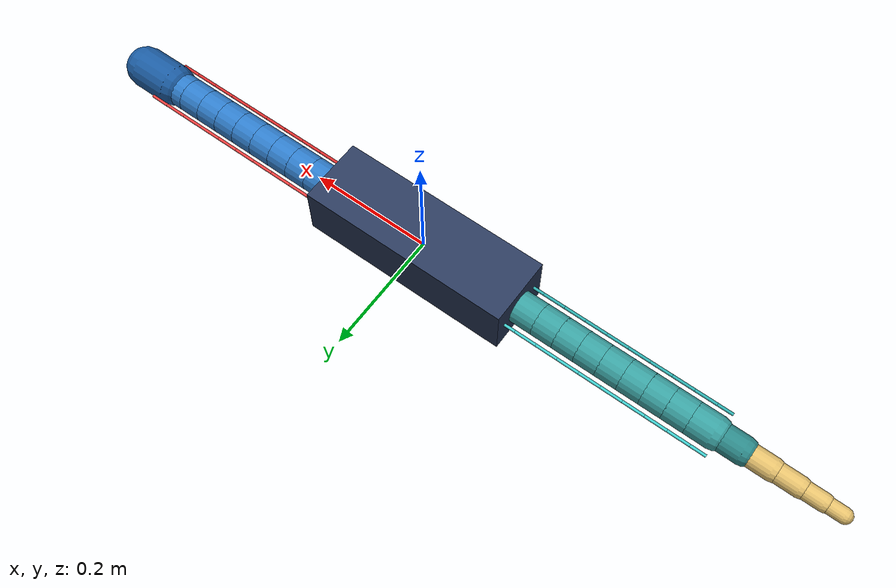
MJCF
<mujoco model="eel_2d_tendon">
  <!-- Topology follows model/prompt_model.md; scale cues are adapted from model/fish.STEP (CAD units are millimeters). -->
  <compiler angle="degree" autolimits="true" inertiafromgeom="true"/>
  <option timestep="0.002" gravity="0 0 0" integrator="implicitfast" cone="elliptic" iterations="100">
    <flag contact="disable"/>
  </option>
  <default>
    <geom type="capsule" contype="0" conaffinity="0" group="1"/>
    <site type="sphere" size="0.004" rgba="0.90 0.20 0.20 1" group="3"/>
    <default class="root_joint">
      <joint limited="false" stiffness="0" armature="0.01" damping="0.4"/>
    </default>
    <default class="active_hinge">
      <joint type="hinge" axis="0 0 1" limited="true" range="-15 15" stiffness="1.041" damping="0.05" armature="0.0005"/>
    </default>
    <default class="tail_hinge">
      <joint type="hinge" axis="0 0 1" limited="true" range="-25 25" stiffness="0.18" damping="0.02" armature="0.0002"/>
    </default>
    <default class="tendon_motor">
      <motor ctrllimited="true" ctrlrange="0 100" gear="1"/>
    </default>
  </default>
  <worldbody>
    <light name="light" directional="true" diffuse="0.8 0.8 0.8" pos="0 0 2.5"/>    <camera name="top" pos="0 0 2.2" xyaxes="1 0 0 0 1 0"/>
    <camera name="oblique" pos="-1.2 -1.6 0.9" xyaxes="0.8 -0.6 0 0.2 0.3 0.93"/>
    <body name="centre_compartment" pos="0 0 0">
      <joint name="root_x" class="root_joint" type="slide" axis="1 0 0"/>
      <joint name="root_y" class="root_joint" type="slide" axis="0 1 0"/>
      <joint name="root_yaw" class="root_joint" type="hinge" axis="0 0 1"/>
      <geom name="centre_compartment_geom" type="box" size="0.175 0.055 0.045" density="190" rgba="0.16 0.22 0.35 1"/>
      <site name="centre_reference" pos="0 0 0" rgba="0 0 0 0"/>
      <site name="centre_front_left" pos="0.175 0.0375 0"/>
      <site name="centre_front_right" pos="0.175 -0.0375 0"/>
      <site name="centre_back_left" pos="-0.175 0.0375 0"/>
      <site name="centre_back_right" pos="-0.175 -0.0375 0"/>
      <body name="front_v1" pos="0.19325 0 0">
        <joint name="front_v1_yaw" class="active_hinge" pos="-0.01825 0 0"/>
        <geom name="front_v1_geom" type="capsule" fromto="-0.01825 0 0 0.01825 0 0" size="0.028" density="220" rgba="0.18 0.48 0.78 1"/>
        <site name="front_v1_left" pos="0 0.0375 0"/>
        <site name="front_v1_right" pos="0 -0.0375 0"/>
        <body name="front_v2" pos="0.0365 0 0">
          <joint name="front_v2_yaw" class="active_hinge" pos="-0.01825 0 0"/>
          <geom name="front_v2_geom" type="capsule" fromto="-0.01825 0 0 0.01825 0 0" size="0.028" density="220" rgba="0.18 0.48 0.78 1"/>
          <site name="front_v2_left" pos="0 0.0375 0"/>
          <site name="front_v2_right" pos="0 -0.0375 0"/>
          <body name="front_v3" pos="0.0365 0 0">
            <joint name="front_v3_yaw" class="active_hinge" pos="-0.01825 0 0"/>
            <geom name="front_v3_geom" type="capsule" fromto="-0.01825 0 0 0.01825 0 0" size="0.028" density="220" rgba="0.18 0.48 0.78 1"/>
            <site name="front_v3_left" pos="0 0.0375 0"/>
            <site name="front_v3_right" pos="0 -0.0375 0"/>
            <body name="front_v4" pos="0.0365 0 0">
              <joint name="front_v4_yaw" class="active_hinge" pos="-0.01825 0 0"/>
              <geom name="front_v4_geom" type="capsule" fromto="-0.01825 0 0 0.01825 0 0" size="0.028" density="220" rgba="0.18 0.48 0.78 1"/>
              <site name="front_v4_left" pos="0 0.0375 0"/>
              <site name="front_v4_right" pos="0 -0.0375 0"/>
              <body name="front_v5" pos="0.0365 0 0">
                <joint name="front_v5_yaw" class="active_hinge" pos="-0.01825 0 0"/>
                <geom name="front_v5_geom" type="capsule" fromto="-0.01825 0 0 0.01825 0 0" size="0.028" density="220" rgba="0.18 0.48 0.78 1"/>
                <site name="front_v5_left" pos="0 0.0375 0"/>
                <site name="front_v5_right" pos="0 -0.0375 0"/>
                <body name="front_v6" pos="0.0365 0 0">
                  <joint name="front_v6_yaw" class="active_hinge" pos="-0.01825 0 0"/>
                  <geom name="front_v6_geom" type="capsule" fromto="-0.01825 0 0 0.01825 0 0" size="0.028" density="220" rgba="0.18 0.48 0.78 1"/>
                  <site name="front_v6_left" pos="0 0.0375 0"/>
                  <site name="front_v6_right" pos="0 -0.0375 0"/>
                  <body name="front_v7" pos="0.0365 0 0">
                    <joint name="front_v7_yaw" class="active_hinge" pos="-0.01825 0 0"/>
                    <geom name="front_v7_geom" type="capsule" fromto="-0.01825 0 0 0.01825 0 0" size="0.028" density="220" rgba="0.18 0.48 0.78 1"/>
                    <site name="front_v7_left" pos="0 0.0375 0"/>
                    <site name="front_v7_right" pos="0 -0.0375 0"/>
                    <body name="front_v8" pos="0.0365 0 0">
                      <joint name="front_v8_yaw" class="active_hinge" pos="-0.01825 0 0"/>
                      <geom name="front_v8_geom" type="capsule" fromto="-0.01825 0 0 0.01825 0 0" size="0.028" density="220" rgba="0.18 0.48 0.78 1"/>
                      <site name="front_v8_left" pos="0 0.0375 0"/>
                      <site name="front_v8_right" pos="0 -0.0375 0"/>
                      <body name="front_v9" pos="0.0365 0 0">
                        <joint name="front_v9_yaw" class="active_hinge" pos="-0.01825 0 0"/>
                        <geom name="front_v9_geom" type="capsule" fromto="-0.01825 0 0 0.01825 0 0" size="0.028" density="220" rgba="0.18 0.48 0.78 1"/>
                        <site name="front_v9_left" pos="0 0.0375 0"/>
                        <site name="front_v9_right" pos="0 -0.0375 0"/>
                        <body name="head" pos="0.04825 0 0">
                          <joint name="head_yaw" class="active_hinge" pos="-0.03 0 0"/>
                          <geom name="head_geom" type="capsule" fromto="-0.03 0 0 0.03 0 0" size="0.034" density="220" rgba="0.10 0.35 0.62 1"/>
                          <site name="head_left" pos="-0.018 0.0375 0"/>
                          <site name="head_right" pos="-0.018 -0.0375 0"/>
                        </body>
                      </body>
                    </body>
                  </body>
                </body>
              </body>
            </body>
          </body>
        </body>
      </body>
      <body name="back_v1" pos="-0.19325 0 0">
        <joint name="back_v1_yaw" class="active_hinge" pos="0.01825 0 0"/>
        <geom name="back_v1_geom" type="capsule" fromto="-0.01825 0 0 0.01825 0 0" size="0.026" density="220" rgba="0.22 0.62 0.62 1"/>
        <site name="back_v1_left" pos="0 0.0375 0"/>
        <site name="back_v1_right" pos="0 -0.0375 0"/>
        <body name="back_v2" pos="-0.0365 0 0">
          <joint name="back_v2_yaw" class="active_hinge" pos="0.01825 0 0"/>
          <geom name="back_v2_geom" type="capsule" fromto="-0.01825 0 0 0.01825 0 0" size="0.026" density="220" rgba="0.22 0.62 0.62 1"/>
          <site name="back_v2_left" pos="0 0.0375 0"/>
          <site name="back_v2_right" pos="0 -0.0375 0"/>
          <body name="back_v3" pos="-0.0365 0 0">
            <joint name="back_v3_yaw" class="active_hinge" pos="0.01825 0 0"/>
            <geom name="back_v3_geom" type="capsule" fromto="-0.01825 0 0 0.01825 0 0" size="0.026" density="220" rgba="0.22 0.62 0.62 1"/>
            <site name="back_v3_left" pos="0 0.0375 0"/>
            <site name="back_v3_right" pos="0 -0.0375 0"/>
            <body name="back_v4" pos="-0.0365 0 0">
              <joint name="back_v4_yaw" class="active_hinge" pos="0.01825 0 0"/>
              <geom name="back_v4_geom" type="capsule" fromto="-0.01825 0 0 0.01825 0 0" size="0.026" density="220" rgba="0.22 0.62 0.62 1"/>
              <site name="back_v4_left" pos="0 0.0375 0"/>
              <site name="back_v4_right" pos="0 -0.0375 0"/>
              <body name="back_v5" pos="-0.0365 0 0">
                <joint name="back_v5_yaw" class="active_hinge" pos="0.01825 0 0"/>
                <geom name="back_v5_geom" type="capsule" fromto="-0.01825 0 0 0.01825 0 0" size="0.026" density="220" rgba="0.22 0.62 0.62 1"/>
                <site name="back_v5_left" pos="0 0.0375 0"/>
                <site name="back_v5_right" pos="0 -0.0375 0"/>
                <body name="back_v6" pos="-0.0365 0 0">
                  <joint name="back_v6_yaw" class="active_hinge" pos="0.01825 0 0"/>
                  <geom name="back_v6_geom" type="capsule" fromto="-0.01825 0 0 0.01825 0 0" size="0.026" density="220" rgba="0.22 0.62 0.62 1"/>
                  <site name="back_v6_left" pos="0 0.0375 0"/>
                  <site name="back_v6_right" pos="0 -0.0375 0"/>
                  <body name="back_v7" pos="-0.0365 0 0">
                    <joint name="back_v7_yaw" class="active_hinge" pos="0.01825 0 0"/>
                    <geom name="back_v7_geom" type="capsule" fromto="-0.01825 0 0 0.01825 0 0" size="0.026" density="220" rgba="0.22 0.62 0.62 1"/>
                    <site name="back_v7_left" pos="0 0.0375 0"/>
                    <site name="back_v7_right" pos="0 -0.0375 0"/>
                    <body name="back_v8" pos="-0.0365 0 0">
                      <joint name="back_v8_yaw" class="active_hinge" pos="0.01825 0 0"/>
                      <geom name="back_v8_geom" type="capsule" fromto="-0.01825 0 0 0.01825 0 0" size="0.026" density="220" rgba="0.22 0.62 0.62 1"/>
                      <site name="back_v8_left" pos="0 0.0375 0"/>
                      <site name="back_v8_right" pos="0 -0.0375 0"/>
                      <body name="back_v9" pos="-0.0365 0 0">
                        <joint name="back_v9_yaw" class="active_hinge" pos="0.01825 0 0"/>
                        <geom name="back_v9_geom" type="capsule" fromto="-0.01825 0 0 0.01825 0 0" size="0.026" density="220" rgba="0.22 0.62 0.62 1"/>
                        <site name="back_v9_left" pos="0 0.0375 0"/>
                        <site name="back_v9_right" pos="0 -0.0375 0"/>
                        <body name="joint_tail" pos="-0.04075 0 0">
                          <joint name="joint_tail_yaw" class="active_hinge" pos="0.0225 0 0"/>
                          <geom name="joint_tail_geom" type="capsule" fromto="-0.0225 0 0 0.0225 0 0" size="0.022" density="220" rgba="0.17 0.53 0.53 1"/>
                          <site name="joint_tail_left" pos="0.015 0.0375 0"/>
                          <site name="joint_tail_right" pos="0.015 -0.0375 0"/>
                          <body name="tail_seg1" pos="-0.045 0 0">
                            <joint name="tail_seg1_yaw" class="tail_hinge" pos="0.0225 0 0"/>
                            <geom name="tail_seg1_geom" type="capsule" fromto="-0.0225 0 0 0.0225 0 0" size="0.018" density="140" rgba="0.88 0.74 0.42 1"/>
                            <body name="tail_seg2" pos="-0.0435 0 0">
                              <joint name="tail_seg2_yaw" class="tail_hinge" pos="0.021 0 0"/>
                              <geom name="tail_seg2_geom" type="capsule" fromto="-0.021 0 0 0.021 0 0" size="0.016" density="140" rgba="0.88 0.74 0.42 1"/>
                              <body name="tail_seg3" pos="-0.039 0 0">
                                <joint name="tail_seg3_yaw" class="tail_hinge" pos="0.018 0 0"/>
                                <geom name="tail_seg3_geom" type="capsule" fromto="-0.018 0 0 0.018 0 0" size="0.014" density="140" rgba="0.88 0.74 0.42 1"/>
                                <body name="tail_seg4" pos="-0.033 0 0">
                                  <joint name="tail_seg4_yaw" class="tail_hinge" pos="0.015 0 0"/>
                                  <geom name="tail_seg4_geom" type="capsule" fromto="-0.015 0 0 0.015 0 0" size="0.012" density="140" rgba="0.88 0.74 0.42 1"/>
                                </body>
                              </body>
                            </body>
                          </body>
                        </body>
                      </body>
                    </body>
                  </body>
                </body>
              </body>
            </body>
          </body>
        </body>
      </body>
    </body>
  </worldbody>
  <tendon>
    <spatial name="front_wire_left" width="0.0025" rgba="0.95 0.25 0.25 1">
      <site site="centre_front_left"/>
      <site site="front_v1_left"/>
      <site site="front_v2_left"/>
      <site site="front_v3_left"/>
      <site site="front_v4_left"/>
      <site site="front_v5_left"/>
      <site site="front_v6_left"/>
      <site site="front_v7_left"/>
      <site site="front_v8_left"/>
      <site site="front_v9_left"/>
      <site site="head_left"/>
    </spatial>
    <spatial name="front_wire_right" width="0.0025" rgba="0.85 0.18 0.18 1">
      <site site="centre_front_right"/>
      <site site="front_v1_right"/>
      <site site="front_v2_right"/>
      <site site="front_v3_right"/>
      <site site="front_v4_right"/>
      <site site="front_v5_right"/>
      <site site="front_v6_right"/>
      <site site="front_v7_right"/>
      <site site="front_v8_right"/>
      <site site="front_v9_right"/>
      <site site="head_right"/>
    </spatial>
    <spatial name="back_wire_left" width="0.0025" rgba="0.25 0.80 0.80 1">
      <site site="centre_back_left"/>
      <site site="back_v1_left"/>
      <site site="back_v2_left"/>
      <site site="back_v3_left"/>
      <site site="back_v4_left"/>
      <site site="back_v5_left"/>
      <site site="back_v6_left"/>
      <site site="back_v7_left"/>
      <site site="back_v8_left"/>
      <site site="back_v9_left"/>
      <site site="joint_tail_left"/>
    </spatial>
    <spatial name="back_wire_right" width="0.0025" rgba="0.18 0.68 0.68 1">
      <site site="centre_back_right"/>
      <site site="back_v1_right"/>
      <site site="back_v2_right"/>
      <site site="back_v3_right"/>
      <site site="back_v4_right"/>
      <site site="back_v5_right"/>
      <site site="back_v6_right"/>
      <site site="back_v7_right"/>
      <site site="back_v8_right"/>
      <site site="back_v9_right"/>
      <site site="joint_tail_right"/>
    </spatial>
  </tendon>
  <actuator>
    <motor name="front_left_motor" class="tendon_motor" tendon="front_wire_left"/>
    <motor name="front_right_motor" class="tendon_motor" tendon="front_wire_right"/>
    <motor name="back_left_motor" class="tendon_motor" tendon="back_wire_left"/>
    <motor name="back_right_motor" class="tendon_motor" tendon="back_wire_right"/>
  </actuator>
  <sensor>
    <jointpos name="root_x_pos_sensor" joint="root_x"/>
    <jointpos name="root_y_pos_sensor" joint="root_y"/>
    <jointpos name="root_yaw_pos_sensor" joint="root_yaw"/>
    <jointvel name="root_x_vel_sensor" joint="root_x"/>
    <jointvel name="root_y_vel_sensor" joint="root_y"/>
    <jointvel name="root_yaw_vel_sensor" joint="root_yaw"/>
    <framepos name="head_pos" objtype="xbody" objname="head"/>
    <framepos name="joint_tail_pos" objtype="xbody" objname="joint_tail"/>
    <framexaxis name="centre_xaxis" objtype="xbody" objname="centre_compartment"/>
  </sensor>
</mujoco>
